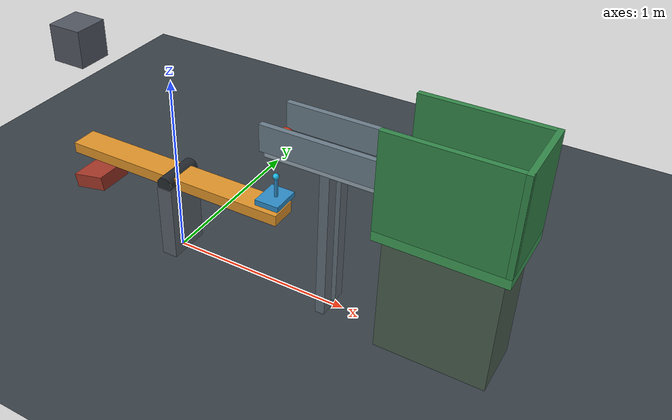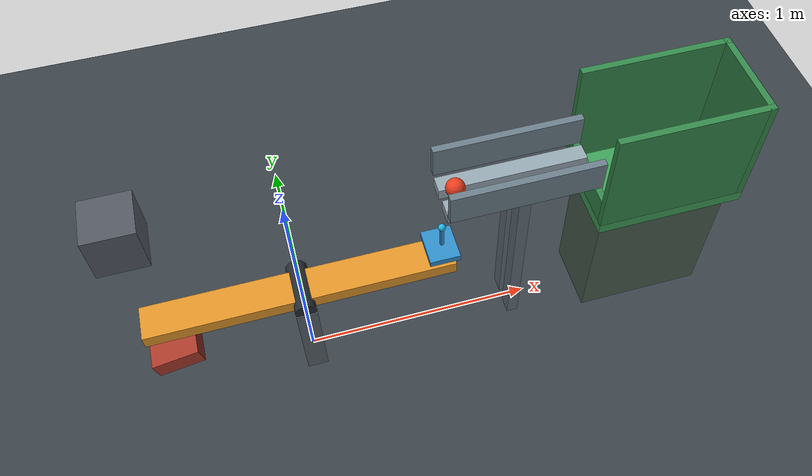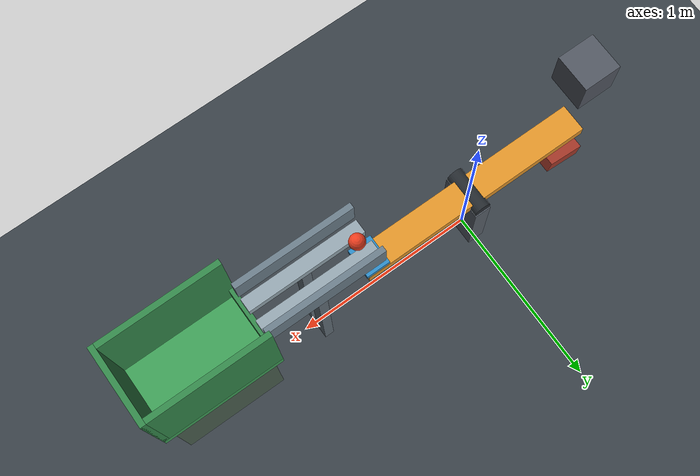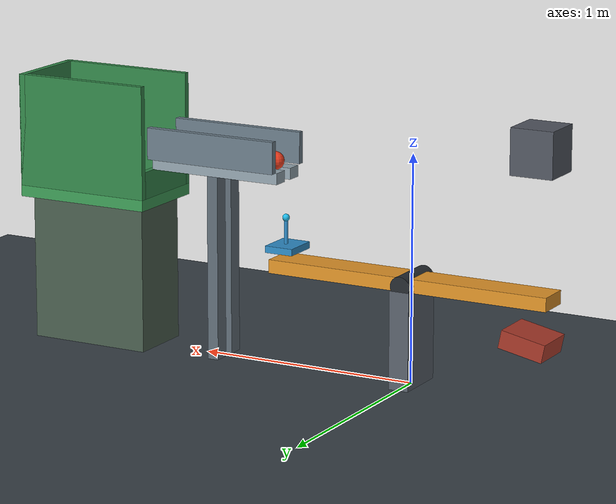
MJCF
<mujoco model="falling_weight_lever_lift_bridge_cup">
  <compiler angle="radian"/>
  <option timestep="0.002" gravity="0 0 -9.81" integrator="implicitfast" cone="elliptic" iterations="100"/>
  <size njmax="1000" nconmax="200"/>

  <visual>
    <global azimuth="135" elevation="-20"/>
    <headlight ambient="0.4 0.4 0.4" diffuse="0.7 0.7 0.7" specular="0.2 0.2 0.2"/>
  </visual>

  <worldbody>
    <light name="overhead_light" pos="0.5 -1 3" dir="0 0 -1"/>
    <camera name="overview" pos="2.8 -4 2.4" xyaxes="0.86 0.51 0 -0.22 0.37 0.90"/>

    <geom name="floor" type="plane" size="4 3 0.1" pos="0 0 0" friction="0.8 0.01 0.005" rgba="0.22 0.25 0.28 1"/>

    <!-- The weight's underside starts exactly 0.5 m above the horizontal lever. -->
    <body name="weight" pos="-0.58 0 1.08">
      <freejoint name="weight_free"/>
      <geom name="weight_block" type="box" size="0.095 0.095 0.10" mass="8" friction="0.7 0.005 0.0001" solref="0.006 1" solimp="0.98 0.995 0.001" rgba="0.32 0.34 0.38 1"/>
    </body>

    <body name="pivot_frame" pos="0 0 0">
      <geom name="pivot_frame_pedestal" type="box" pos="0 0 0.215" size="0.045 0.12 0.215" contype="0" conaffinity="0" rgba="0.35 0.38 0.42 1"/>
      <geom name="pivot_frame_axle" type="cylinder" pos="0 0 0.45" quat="0.707106781 0.707106781 0 0" size="0.045 0.115" contype="0" conaffinity="0" rgba="0.15 0.17 0.19 1"/>
    </body>

    <!-- This inclined block meets the underside of the lever at its lower stop. -->
    <body name="lever_stop" pos="-0.554533 0 0.266167" quat="0.995004165 0 -0.099833417 0">
      <geom name="lever_stop_block" type="box" size="0.10 0.10 0.04" friction="0.7 0.005 0.0001" solref="0.004 1" solimp="0.995 0.999 0.0005" rgba="0.65 0.22 0.16 1"/>
    </body>

    <body name="lever" pos="0 0 0.45">
      <joint name="lever_hinge" type="hinge" axis="0 1 0" limited="true" range="-0.20 0" damping="0.02" armature="0.005" solreflimit="0.004 1" solimplimit="0.995 0.999 0.0005"/>
      <geom name="lever_beam" type="box" size="0.65 0.075 0.03" mass="1" friction="0.7 0.005 0.0001" solref="0.006 1" solimp="0.98 0.995 0.001" rgba="0.88 0.58 0.16 1"/>
    </body>

    <body name="lift" pos="0.60 0 0.525">
      <joint name="lift_slide" type="slide" axis="0 0 1" limited="true" range="0 0.50" damping="0.015" armature="0.001" solreflimit="0.004 1" solimplimit="0.995 0.999 0.0005"/>
      <geom name="lift_foot" type="box" size="0.065 0.08 0.015" mass="0.18" friction="0.5 0.005 0.0001" solref="0.006 1" solimp="0.98 0.995 0.001" rgba="0.18 0.55 0.78 1"/>
      <geom name="lift_stem" type="capsule" fromto="0.007 0 0.015 0.007 0 0.119" size="0.009" mass="0.025" friction="0.2 0.005 0.0001" rgba="0.18 0.55 0.78 1"/>
      <geom name="lift_striker" type="sphere" pos="0.007 0 0.130" size="0.016" mass="0.015" friction="0.2 0.005 0.0001" solref="0.006 1" solimp="0.98 0.995 0.001" rgba="0.12 0.72 0.90 1"/>
    </body>

    <!--
      Two rails support the ball while leaving a central opening for the striker.
      Its offset contact pushes the ball predominantly toward positive x.
    -->
    <body name="bridge" pos="0 0 0">
      <geom name="bridge_left_rail" type="box" pos="0.91 -0.059 0.843" size="0.31 0.035 0.025" condim="6" friction="0.2 0.005 0.0001" solref="0.01 1" rgba="0.58 0.65 0.69 1"/>
      <geom name="bridge_right_rail" type="box" pos="0.91 0.059 0.843" size="0.31 0.035 0.025" condim="6" friction="0.2 0.005 0.0001" solref="0.01 1" rgba="0.58 0.65 0.69 1"/>
      <geom name="bridge_left_guard" type="box" pos="0.91 -0.12 0.94" size="0.31 0.015 0.07" condim="6" friction="0.2 0.005 0.0001" rgba="0.42 0.49 0.54 1"/>
      <geom name="bridge_right_guard" type="box" pos="0.91 0.12 0.94" size="0.31 0.015 0.07" condim="6" friction="0.2 0.005 0.0001" rgba="0.42 0.49 0.54 1"/>
      <geom name="bridge_left_support" type="box" pos="0.92 -0.059 0.409" size="0.025 0.035 0.409" rgba="0.38 0.43 0.47 1"/>
      <geom name="bridge_right_support" type="box" pos="0.92 0.059 0.409" size="0.025 0.035 0.409" rgba="0.38 0.43 0.47 1"/>
    </body>

    <body name="ball" pos="0.66 0 0.90">
      <freejoint name="ball_free"/>
      <geom name="ball_sphere" type="sphere" size="0.04" mass="0.06" condim="6" friction="0.2 0.005 0.0001" solref="0.01 1" solimp="0.98 0.995 0.001" rgba="0.92 0.24 0.12 1"/>
    </body>

    <!-- The low entrance lip clears the bridge; the rough cup dissipates rolling motion. -->
    <body name="cup" pos="0 0 0">
      <geom name="cup_bottom" type="box" pos="1.524 0 0.675" size="0.314 0.198 0.025" condim="6" friction="1 0.01 0.02" solref="0.015 1" solimp="0.98 0.995 0.001" rgba="0.24 0.62 0.34 1"/>
      <geom name="cup_front_lip" type="box" pos="1.224 0 0.76" size="0.014 0.17 0.06" condim="6" friction="1 0.01 0.02" solref="0.015 1" rgba="0.20 0.53 0.29 1"/>
      <geom name="cup_back_wall" type="box" pos="1.824 0 0.95" size="0.014 0.198 0.25" condim="6" friction="1 0.01 0.02" solref="0.015 1" rgba="0.20 0.53 0.29 1"/>
      <geom name="cup_left_wall" type="box" pos="1.524 -0.184 0.95" size="0.314 0.014 0.25" condim="6" friction="1 0.01 0.02" solref="0.015 1" rgba="0.20 0.53 0.29 1"/>
      <geom name="cup_right_wall" type="box" pos="1.524 0.184 0.95" size="0.314 0.014 0.25" condim="6" friction="1 0.01 0.02" solref="0.015 1" rgba="0.20 0.53 0.29 1"/>
      <geom name="cup_support" type="box" pos="1.524 0 0.325" size="0.28 0.15 0.325" rgba="0.29 0.37 0.31 1"/>
    </body>
  </worldbody>

  <keyframe>
    <key name="start" time="0" qpos="-0.58 0 1.08 1 0 0 0 0 0 0.66 0 0.90 1 0 0 0"/>
  </keyframe>
</mujoco>
